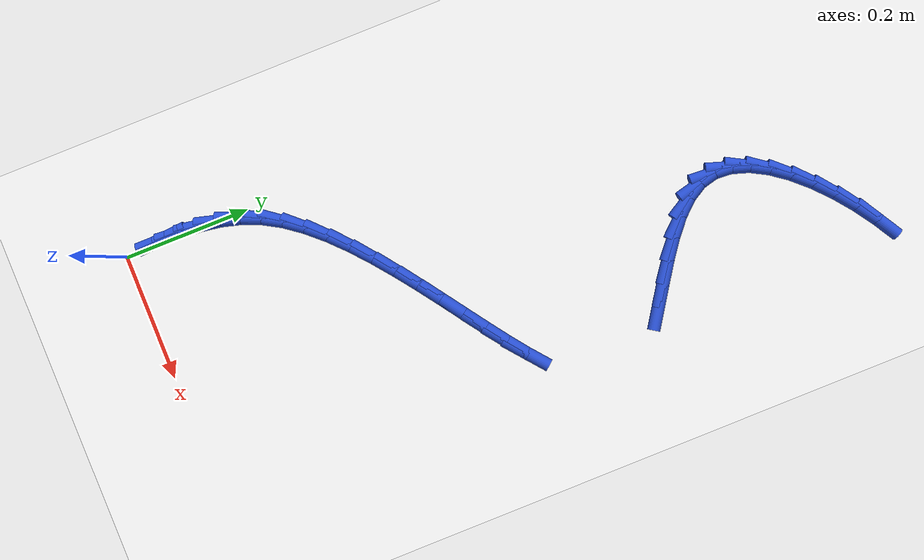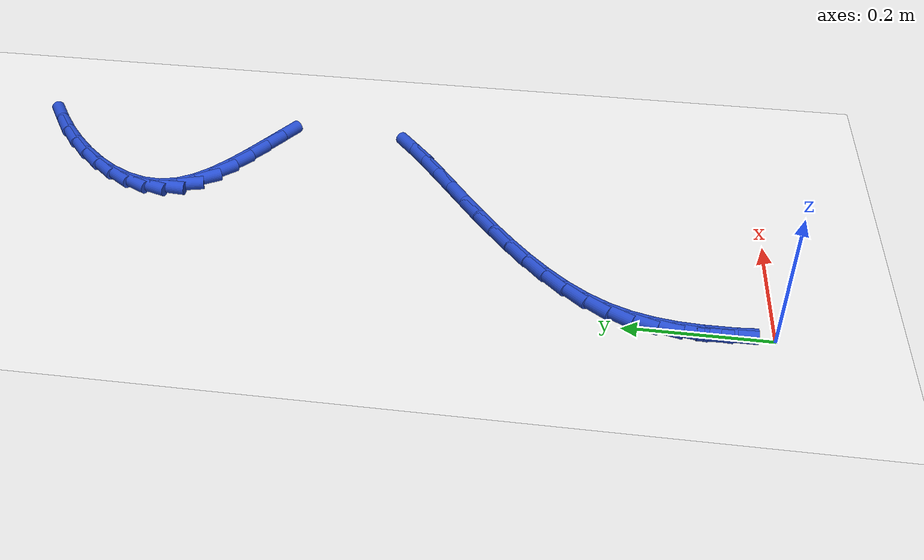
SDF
<sdf version="1.6">
 <world name="default">
  <model name="ground_plane">
   <static>1</static>
   <link name="link">
    <collision name="collision">
     <geometry><plane><normal>0 0 1</normal><size>100 100</size></plane></geometry>
     <surface><friction><ode><mu>100</mu><mu2>50</mu2></ode></friction></surface>
    </collision>
    <visual name="visual">
     <cast_shadows>0</cast_shadows>
     <geometry><plane><normal>0 0 1</normal><size>100 100</size></plane></geometry>
     <material>
      <script><uri>file://media/materials/scripts/gazebo.material</uri><name>Gazebo/WhiteGlow</name></script>
     </material>
    </visual>
   </link>
  </model>
  <model name="line">
   <link name="link_2">
    <pose>-0.004021602005209488 0.06390869450469114 0.01 0 1.57 -1.5667021113652158</pose>
    <collision name="collision">
     <geometry><cylinder><radius>0.01</radius><length>0.08</length></cylinder></geometry>
    </collision>
    <visual name="visual">
     <material>
      <script><name>Gazebo/Blue</name><uri>file://media/materials/scripts/gazebo.material</uri></script>
     </material>
     <geometry><cylinder><radius>0.01</radius><length>0.08</length></cylinder></geometry>
    </visual>
   </link>
   <link name="link_3">
    <pose>-0.0041515814430665285 0.09565561007965417 0.01 0 1.57 1.5078229732911912</pose>
    <collision name="collision">
     <geometry><cylinder><radius>0.01</radius><length>0.08</length></cylinder></geometry>
    </collision>
    <visual name="visual">
     <material>
      <script><name>Gazebo/Blue</name><uri>file://media/materials/scripts/gazebo.material</uri></script>
     </material>
     <geometry><cylinder><radius>0.01</radius><length>0.08</length></cylinder></geometry>
    </visual>
   </link>
   <link name="link_4">
    <pose>-0.002169507307033483 0.12708879993930586 0.01 0 1.57 1.419080571154896</pose>
    <collision name="collision">
     <geometry><cylinder><radius>0.01</radius><length>0.08</length></cylinder></geometry>
    </collision>
    <visual name="visual">
     <material>
      <script><name>Gazebo/Blue</name><uri>file://media/materials/scripts/gazebo.material</uri></script>
     </material>
     <geometry><cylinder><radius>0.01</radius><length>0.08</length></cylinder></geometry>
    </visual>
   </link>
   <link name="link_5">
    <pose>0.0025682498009333594 0.15807668563585411 0.01 0 1.57 1.309350844203637</pose>
    <collision name="collision">
     <geometry><cylinder><radius>0.01</radius><length>0.08</length></cylinder></geometry>
    </collision>
    <visual name="visual">
     <material>
      <script><name>Gazebo/Blue</name><uri>file://media/materials/scripts/gazebo.material</uri></script>
     </material>
     <geometry><cylinder><radius>0.01</radius><length>0.08</length></cylinder></geometry>
    </visual>
   </link>
   <link name="link_6">
    <pose>0.010705319278877728 0.18848768872150673 0.01 0 1.57 1.181642345819273</pose>
    <collision name="collision">
     <geometry><cylinder><radius>0.01</radius><length>0.08</length></cylinder></geometry>
    </collision>
    <visual name="visual">
     <material>
      <script><name>Gazebo/Blue</name><uri>file://media/materials/scripts/gazebo.material</uri></script>
     </material>
     <geometry><cylinder><radius>0.01</radius><length>0.08</length></cylinder></geometry>
    </visual>
   </link>
   <link name="link_7">
    <pose>0.022885330524843324 0.2181902307484714 0.01 0 1.57 1.0456067004906662</pose>
    <collision name="collision">
     <geometry><cylinder><radius>0.01</radius><length>0.08</length></cylinder></geometry>
    </collision>
    <visual name="visual">
     <material>
      <script><name>Gazebo/Blue</name><uri>file://media/materials/scripts/gazebo.material</uri></script>
     </material>
     <geometry><cylinder><radius>0.01</radius><length>0.08</length></cylinder></geometry>
    </visual>
   </link>
   <link name="link_8">
    <pose>0.03962026689619942 0.24706979219742364 0.01 0 1.57 0.9286825390707635</pose>
    <collision name="collision">
     <geometry><cylinder><radius>0.01</radius><length>0.08</length></cylinder></geometry>
    </collision>
    <visual name="visual">
     <material>
      <script><name>Gazebo/Blue</name><uri>file://media/materials/scripts/gazebo.material</uri></script>
     </material>
     <geometry><cylinder><radius>0.01</radius><length>0.08</length></cylinder></geometry>
    </visual>
   </link>
   <link name="link_9">
    <pose>0.060596329189876307 0.2751188599242867 0.01 0 1.57 0.8368329069749436</pose>
    <collision name="collision">
     <geometry><cylinder><radius>0.01</radius><length>0.08</length></cylinder></geometry>
    </collision>
    <visual name="visual">
     <material>
      <script><name>Gazebo/Blue</name><uri>file://media/materials/scripts/gazebo.material</uri></script>
     </material>
     <geometry><cylinder><radius>0.01</radius><length>0.08</length></cylinder></geometry>
    </visual>
   </link>
   <link name="link_10">
    <pose>0.08518024386516361 0.3023713188387736 0.01 0 1.57 0.7656408068478139</pose>
    <collision name="collision">
     <geometry><cylinder><radius>0.01</radius><length>0.08</length></cylinder></geometry>
    </collision>
    <visual name="visual">
     <material>
      <script><name>Gazebo/Blue</name><uri>file://media/materials/scripts/gazebo.material</uri></script>
     </material>
     <geometry><cylinder><radius>0.01</radius><length>0.08</length></cylinder></geometry>
    </visual>
   </link>
   <link name="link_11">
    <pose>0.11273804569964228 0.32886114347994544 0.01 0 1.57 0.7112147203467966</pose>
    <collision name="collision">
     <geometry><cylinder><radius>0.01</radius><length>0.08</length></cylinder></geometry>
    </collision>
    <visual name="visual">
     <material>
      <script><name>Gazebo/Blue</name><uri>file://media/materials/scripts/gazebo.material</uri></script>
     </material>
     <geometry><cylinder><radius>0.01</radius><length>0.08</length></cylinder></geometry>
    </visual>
   </link>
   <link name="link_12">
    <pose>0.1426357694708931 0.35462230838686293 0.01 0 1.57 0.670550532819632</pose>
    <collision name="collision">
     <geometry><cylinder><radius>0.01</radius><length>0.08</length></cylinder></geometry>
    </collision>
    <visual name="visual">
     <material>
      <script><name>Gazebo/Blue</name><uri>file://media/materials/scripts/gazebo.material</uri></script>
     </material>
     <geometry><cylinder><radius>0.01</radius><length>0.08</length></cylinder></geometry>
    </visual>
   </link>
   <link name="link_13">
    <pose>0.17423944995649707 0.3796887880985874 0.01 0 1.57 0.6415202379043854</pose>
    <collision name="collision">
     <geometry><cylinder><radius>0.01</radius><length>0.08</length></cylinder></geometry>
    </collision>
    <visual name="visual">
     <material>
      <script><name>Gazebo/Blue</name><uri>file://media/materials/scripts/gazebo.material</uri></script>
     </material>
     <geometry><cylinder><radius>0.01</radius><length>0.08</length></cylinder></geometry>
    </visual>
   </link>
   <link name="link_14">
    <pose>0.20691512193403513 0.40409455715417963 0.01 0 1.57 0.6227723261044366</pose>
    <collision name="collision">
     <geometry><cylinder><radius>0.01</radius><length>0.08</length></cylinder></geometry>
    </collision>
    <visual name="visual">
     <material>
      <script><name>Gazebo/Blue</name><uri>file://media/materials/scripts/gazebo.material</uri></script>
     </material>
     <geometry><cylinder><radius>0.01</radius><length>0.08</length></cylinder></geometry>
    </visual>
   </link>
   <link name="link_15">
    <pose>0.24002882018108815 0.4278735900927007 0.01 0 1.57 0.6136526146524506</pose>
    <collision name="collision">
     <geometry><cylinder><radius>0.01</radius><length>0.08</length></cylinder></geometry>
    </collision>
    <visual name="visual">
     <material>
      <script><name>Gazebo/Blue</name><uri>file://media/materials/scripts/gazebo.material</uri></script>
     </material>
     <geometry><cylinder><radius>0.01</radius><length>0.08</length></cylinder></geometry>
    </visual>
   </link>
   <link name="link_16">
    <pose>0.2729465794752371 0.45105986145321164 0.01 0 1.57 0.6141892470630065</pose>
    <collision name="collision">
     <geometry><cylinder><radius>0.01</radius><length>0.08</length></cylinder></geometry>
    </collision>
    <visual name="visual">
     <material>
      <script><name>Gazebo/Blue</name><uri>file://media/materials/scripts/gazebo.material</uri></script>
     </material>
     <geometry><cylinder><radius>0.01</radius><length>0.08</length></cylinder></geometry>
    </visual>
   </link>
   <link name="link_17">
    <pose>0.3050344345940627 0.4736873457747733 0.01 0 1.57 0.6251705492804259</pose>
    <collision name="collision">
     <geometry><cylinder><radius>0.01</radius><length>0.08</length></cylinder></geometry>
    </collision>
    <visual name="visual">
     <material>
      <script><name>Gazebo/Blue</name><uri>file://media/materials/scripts/gazebo.material</uri></script>
     </material>
     <geometry><cylinder><radius>0.01</radius><length>0.08</length></cylinder></geometry>
    </visual>
   </link>
   <link name="link_18">
    <pose>0.33565842031514603 0.4957900175964468 0.01 0 1.57 0.6483567855411126</pose>
    <collision name="collision">
     <geometry><cylinder><radius>0.01</radius><length>0.08</length></cylinder></geometry>
    </collision>
    <visual name="visual">
     <material>
      <script><name>Gazebo/Blue</name><uri>file://media/materials/scripts/gazebo.material</uri></script>
     </material>
     <geometry><cylinder><radius>0.01</radius><length>0.08</length></cylinder></geometry>
    </visual>
   </link>
   <link name="link_19">
    <pose>0.3641845714160681 0.5174018514572932 0.01 0 1.57 0.6869011520319974</pose>
    <collision name="collision">
     <geometry><cylinder><radius>0.01</radius><length>0.08</length></cylinder></geometry>
    </collision>
    <visual name="visual">
     <material>
      <script><name>Gazebo/Blue</name><uri>file://media/materials/scripts/gazebo.material</uri></script>
     </material>
     <geometry><cylinder><radius>0.01</radius><length>0.08</length></cylinder></geometry>
    </visual>
   </link>
   <link name="link_30">
    <pose>0.37140587851153106 0.7332696501817295 0.01 0 1.57 -0.5793096695045861</pose>
    <collision name="collision">
     <geometry><cylinder><radius>0.01</radius><length>0.08</length></cylinder></geometry>
    </collision>
    <visual name="visual">
     <material>
      <script><name>Gazebo/Blue</name><uri>file://media/materials/scripts/gazebo.material</uri></script>
     </material>
     <geometry><cylinder><radius>0.01</radius><length>0.08</length></cylinder></geometry>
    </visual>
   </link>
   <link name="link_31">
    <pose>0.34176716422271297 0.7526587707676894 0.01 0 1.57 -0.5865405830983392</pose>
    <collision name="collision">
     <geometry><cylinder><radius>0.01</radius><length>0.08</length></cylinder></geometry>
    </collision>
    <visual name="visual">
     <material>
      <script><name>Gazebo/Blue</name><uri>file://media/materials/scripts/gazebo.material</uri></script>
     </material>
     <geometry><cylinder><radius>0.01</radius><length>0.08</length></cylinder></geometry>
    </visual>
   </link>
   <link name="link_32">
    <pose>0.31173961639051234 0.772613785295512 0.01 0 1.57 -0.6248965012241878</pose>
    <collision name="collision">
     <geometry><cylinder><radius>0.01</radius><length>0.08</length></cylinder></geometry>
    </collision>
    <visual name="visual">
     <material>
      <script><name>Gazebo/Blue</name><uri>file://media/materials/scripts/gazebo.material</uri></script>
     </material>
     <geometry><cylinder><radius>0.01</radius><length>0.08</length></cylinder></geometry>
    </visual>
   </link>
   <link name="link_33">
    <pose>0.28304207397510156 0.7933140997328448 0.01 0 1.57 -0.7004883360157022</pose>
    <collision name="collision">
     <geometry><cylinder><radius>0.01</radius><length>0.08</length></cylinder></geometry>
    </collision>
    <visual name="visual">
     <material>
      <script><name>Gazebo/Blue</name><uri>file://media/materials/scripts/gazebo.material</uri></script>
     </material>
     <geometry><cylinder><radius>0.01</radius><length>0.08</length></cylinder></geometry>
    </visual>
   </link>
   <link name="link_34">
    <pose>0.25739337593665257 0.8149391200473355 0.01 0 1.57 -0.8277509742001534</pose>
    <collision name="collision">
     <geometry><cylinder><radius>0.01</radius><length>0.08</length></cylinder></geometry>
    </collision>
    <visual name="visual">
     <material>
      <script><name>Gazebo/Blue</name><uri>file://media/materials/scripts/gazebo.material</uri></script>
     </material>
     <geometry><cylinder><radius>0.01</radius><length>0.08</length></cylinder></geometry>
    </visual>
   </link>
   <link name="link_35">
    <pose>0.23651236123533753 0.8376682522066319 0.01 0 1.57 -1.0307779855114736</pose>
    <collision name="collision">
     <geometry><cylinder><radius>0.01</radius><length>0.08</length></cylinder></geometry>
    </collision>
    <visual name="visual">
     <material>
      <script><name>Gazebo/Blue</name><uri>file://media/materials/scripts/gazebo.material</uri></script>
     </material>
     <geometry><cylinder><radius>0.01</radius><length>0.08</length></cylinder></geometry>
    </visual>
   </link>
   <link name="link_36">
    <pose>0.22211786883132853 0.8616809021783809 0.01 0 1.57 -1.3268220585196373</pose>
    <collision name="collision">
     <geometry><cylinder><radius>0.01</radius><length>0.08</length></cylinder></geometry>
    </collision>
    <visual name="visual">
     <material>
      <script><name>Gazebo/Blue</name><uri>file://media/materials/scripts/gazebo.material</uri></script>
     </material>
     <geometry><cylinder><radius>0.01</radius><length>0.08</length></cylinder></geometry>
    </visual>
   </link>
   <link name="link_37">
    <pose>0.2157850015590055 0.887120939372997 0.01 0 1.57 1.5058635755369905</pose>
    <collision name="collision">
     <geometry><cylinder><radius>0.01</radius><length>0.08</length></cylinder></geometry>
    </collision>
    <visual name="visual">
     <material>
      <script><name>Gazebo/Blue</name><uri>file://media/materials/scripts/gazebo.material</uri></script>
     </material>
     <geometry><cylinder><radius>0.01</radius><length>0.08</length></cylinder></geometry>
    </visual>
   </link>
   <link name="link_38">
    <pose>0.21751610432186064 0.9137433928733975 0.01 0 1.57 1.2582718332801102</pose>
    <collision name="collision">
     <geometry><cylinder><radius>0.01</radius><length>0.08</length></cylinder></geometry>
    </collision>
    <visual name="visual">
     <material>
      <script><name>Gazebo/Blue</name><uri>file://media/materials/scripts/gazebo.material</uri></script>
     </material>
     <geometry><cylinder><radius>0.01</radius><length>0.08</length></cylinder></geometry>
    </visual>
   </link>
   <link name="link_39">
    <pose>0.22634359132044546 0.9410634912409002 0.01 0 1.57 1.0735248415382026</pose>
    <collision name="collision">
     <geometry><cylinder><radius>0.01</radius><length>0.08</length></cylinder></geometry>
    </collision>
    <visual name="visual">
     <material>
      <script><name>Gazebo/Blue</name><uri>file://media/materials/scripts/gazebo.material</uri></script>
     </material>
     <geometry><cylinder><radius>0.01</radius><length>0.08</length></cylinder></geometry>
    </visual>
   </link>
   <link name="link_40">
    <pose>0.24128560792490975 0.968592935286887 0.01 0 1.57 0.9358794147932371</pose>
    <collision name="collision">
     <geometry><cylinder><radius>0.01</radius><length>0.08</length></cylinder></geometry>
    </collision>
    <visual name="visual">
     <material>
      <script><name>Gazebo/Blue</name><uri>file://media/materials/scripts/gazebo.material</uri></script>
     </material>
     <geometry><cylinder><radius>0.01</radius><length>0.08</length></cylinder></geometry>
    </visual>
   </link>
   <link name="link_41">
    <pose>0.26136029950540357 0.9958434258227414 0.01 0 1.57 0.8298921775060079</pose>
    <collision name="collision">
     <geometry><cylinder><radius>0.01</radius><length>0.08</length></cylinder></geometry>
    </collision>
    <visual name="visual">
     <material>
      <script><name>Gazebo/Blue</name><uri>file://media/materials/scripts/gazebo.material</uri></script>
     </material>
     <geometry><cylinder><radius>0.01</radius><length>0.08</length></cylinder></geometry>
    </visual>
   </link>
   <link name="link_42">
    <pose>0.28558581143207684 1.0223266636598471 0.01 0 1.57 0.7442450029475504</pose>
    <collision name="collision">
     <geometry><cylinder><radius>0.01</radius><length>0.08</length></cylinder></geometry>
    </collision>
    <visual name="visual">
     <material>
      <script><name>Gazebo/Blue</name><uri>file://media/materials/scripts/gazebo.material</uri></script>
     </material>
     <geometry><cylinder><radius>0.01</radius><length>0.08</length></cylinder></geometry>
    </visual>
   </link>
   <link name="link_43">
    <pose>0.31298028907507935 1.0475543496095863 0.01 0 1.57 0.6709898506800154</pose>
    <collision name="collision">
     <geometry><cylinder><radius>0.01</radius><length>0.08</length></cylinder></geometry>
    </collision>
    <visual name="visual">
     <material>
      <script><name>Gazebo/Blue</name><uri>file://media/materials/scripts/gazebo.material</uri></script>
     </material>
     <geometry><cylinder><radius>0.01</radius><length>0.08</length></cylinder></geometry>
    </visual>
   </link>
   <link name="link_44">
    <pose>0.3425618778045614 1.0710381844833428 0.01 0 1.57 0.6041757468511973</pose>
    <collision name="collision">
     <geometry><cylinder><radius>0.01</radius><length>0.08</length></cylinder></geometry>
    </collision>
    <visual name="visual">
     <material>
      <script><name>Gazebo/Blue</name><uri>file://media/materials/scripts/gazebo.material</uri></script>
     </material>
     <geometry><cylinder><radius>0.01</radius><length>0.08</length></cylinder></geometry>
    </visual>
   </link>
   <link name="link_45">
    <pose>0.3733487229906724 1.092289869092499 0.01 0 1.57 0.5387756803722319</pose>
    <collision name="collision">
     <geometry><cylinder><radius>0.01</radius><length>0.08</length></cylinder></geometry>
    </collision>
    <visual name="visual">
     <material>
      <script><name>Gazebo/Blue</name><uri>file://media/materials/scripts/gazebo.material</uri></script>
     </material>
     <geometry><cylinder><radius>0.01</radius><length>0.08</length></cylinder></geometry>
    </visual>
   </link>
   <link name="link_282">
    <pose>-0.0049171902510011505 0.06399935874159622 0.01 0 1.57 -1.4941151090530909</pose>
    <collision name="collision">
     <geometry><cylinder><radius>0.01</radius><length>0.08</length></cylinder></geometry>
    </collision>
    <visual name="visual">
     <material>
      <script><name>Gazebo/Blue</name><uri>file://media/materials/scripts/gazebo.material</uri></script>
     </material>
     <geometry><cylinder><radius>0.01</radius><length>0.08</length></cylinder></geometry>
    </visual>
   </link>
  </model>
 </world>
</sdf>
